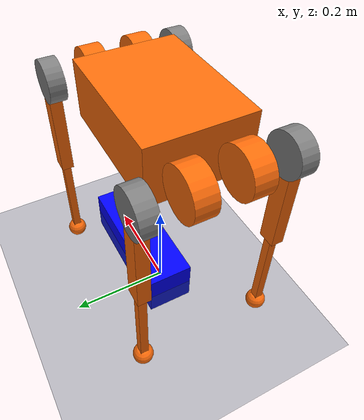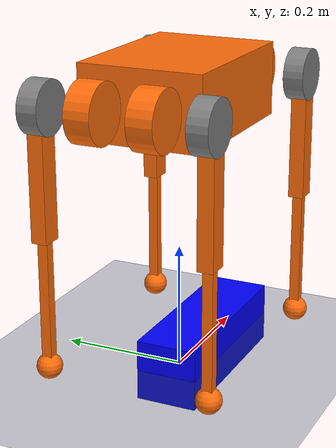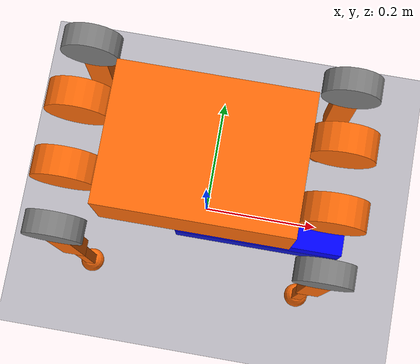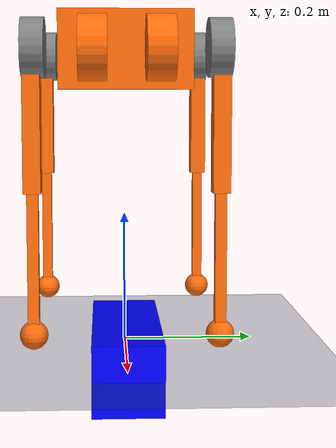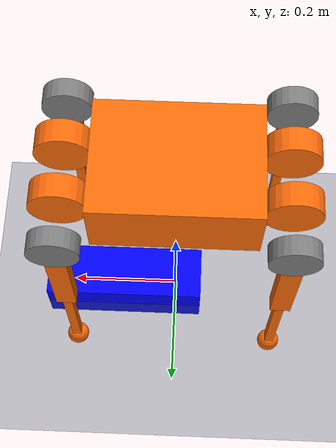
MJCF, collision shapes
<mujoco model="a1">
  <compiler angle="radian" meshdir="../meshes/"/>

  <asset>
    <texture type="skybox" builtin="gradient" rgb1="0.3 0.5 0.7" rgb2="0 0 0" width="512" height="512" />
    <texture name="texplane" type="2d" builtin="checker" rgb1=".2 .3 .4" rgb2=".1 0.15 0.2" width="512" height="512" mark="cross" markrgb=".8 .8 .8" />
    <material name="matplane" reflectance="0.3" texture="texplane" texrepeat="1 1" texuniform="true" />

    <mesh name="trunk" file="trunk.obj"/>
    <mesh name="hip" file="hip.obj"/>
    <mesh name="thigh_mirror" file="thigh_mirror.obj"/>
    <mesh name="calf" file="calf.obj"/>
    <mesh name="thigh" file="thigh.obj"/>
  </asset>

  <worldbody>
    <light directional="true" diffuse=".4 .4 .4" specular="0.1 0.1 0.1" pos="0 0 5.0" dir="0 0 -1" castshadow="false" />
    <light directional="true" diffuse=".6 .6 .6" specular="0.2 0.2 0.2" pos="0 0 4" dir="0 0 -1" />
    <geom name="floor" pos="0 0 0" size="15 15 1" type="plane" material="matplane" margin="0.001" condim="3" friction="1 0.005 0.0001" />

    <geom type="box" size="0.15 0.05 0.05" pos="0.1 0 0" rgba="0 0 1 0.3"/>

    <geom size="0.0005 0.0005 0.0005" type="box" contype="0" conaffinity="0" group="1" density="0"/>

    <body name="trunk" pos="0 0 0.45">
      <site name="imu_sensor_site" pos="0 0 0" />
      <inertial pos="0.0 0.0041 -0.0005" mass="6.0" diaginertia="0.0158533 0.0377999 0.0456542" />
      <joint name="floating_base" type="free" limited="false" actuatorfrclimited="false"/>
      <geom type="mesh" contype="0" conaffinity="0" group="1" density="0" rgba="1 0.423529 0.0392157 1" mesh="trunk"/>
      <geom size="0.1335 0.097 0.057" type="box" group="2" rgba="1 0.423529 0.0392157 1"/>
      <body name="FR_hip" pos="0.1805 -0.047 0">
        <inertial pos="-0.00266413 -0.0163358 2.49436e-05" quat="0.475134 0.521822 -0.477036 0.523818" mass="0.864993" diaginertia="0.00151807 0.00143717 0.000946744"/>
        <joint name="RF_HAA" pos="0 0 0" axis="1 0 0" range="-0.802851 0.802851" actuatorfrcrange="-33.5 33.5" damping="0.01" frictionloss="0.2"/>
        <geom quat="0 1 0 0" type="mesh" contype="0" conaffinity="0" group="1" density="0" rgba="1 0.423529 0.0392157 1" mesh="hip"/>
        <geom size="0.046 0.02" quat="0.707107 0.707107 0 0" type="cylinder" group="2" rgba="1 0.423529 0.0392157 1"/>
        <geom size="0.041 0.016" pos="0 -0.081 0" quat="0.707107 0.707107 0 0" type="cylinder" group="2"/>
        <body name="FR_thigh" pos="0 -0.0838 0">
          <inertial pos="-0.003237 0.022327 -0.027326" quat="0.999125 -0.00256393 -0.0409531 -0.00806091" mass="1.013" diaginertia="0.00555739 0.00513936 0.00133944"/>
          <joint name="RF_HFE" pos="0 0 0" axis="0 1 0" range="-1.0472 4.18879" actuatorfrcrange="-33.5 33.5" damping="0.01" frictionloss="0.2"/>
          <geom type="mesh" contype="0" conaffinity="0" group="1" density="0" rgba="1 0.423529 0.0392157 1" mesh="thigh_mirror"/>
          <geom size="0.1 0.01225 0.017" pos="0 0 -0.1" quat="0.707107 0 0.707107 0" type="box" group="2" rgba="1 0.423529 0.0392157 1"/>
          <body name="FR_calf" pos="0 0 -0.2">
            <inertial pos="0.00472659 0 -0.131975" quat="0.706886 0.017653 0.017653 0.706886" mass="0.226" diaginertia="0.00340344 0.00339393 3.54834e-05"/>
            <joint name="RF_KFE" pos="0 0 0" axis="0 1 0" range="-2.69653 -0.916298" actuatorfrcrange="-33.5 33.5" damping="0.01" frictionloss="0.2"/>
            <geom type="mesh" contype="0" conaffinity="0" group="1" density="0" rgba="1 0.423529 0.0392157 1" mesh="calf"/>
            <geom size="0.1 0.008 0.008" pos="0 0 -0.1" quat="0.707107 0 0.707107 0" type="box" group="2" rgba="1 0.423529 0.0392157 1"/>
            <body name="RF_FOOT" pos="0 0 -0.2">
              <geom size="0.01" contype="0" conaffinity="0" group="1" density="0" rgba="1 0.423529 0.0392157 1"/>
              <geom name="RF_FOOT_geom" size="0.02" group="2" rgba="1 0.423529 0.0392157 1"/>
            </body>
          </body>
        </body>
      </body>
      <body name="FL_hip" pos="0.1805 0.047 0">
        <inertial pos="-0.00266413 0.0163358 2.49436e-05" quat="0.521822 0.475134 -0.523818 0.477036" mass="0.864993" diaginertia="0.00151807 0.00143717 0.000946744"/>
        <joint name="LF_HAA" pos="0 0 0" axis="1 0 0" range="-0.802851 0.802851" actuatorfrcrange="-33.5 33.5" damping="0.01" frictionloss="0.2"/>
        <geom type="mesh" contype="0" conaffinity="0" group="1" density="0" rgba="1 0.423529 0.0392157 1" mesh="hip"/>
        <geom size="0.046 0.02" quat="0.707107 0.707107 0 0" type="cylinder" group="2" rgba="1 0.423529 0.0392157 1"/>
        <geom size="0.041 0.016" pos="0 0.081 0" quat="0.707107 0.707107 0 0" group="2" type="cylinder"/>
        <body name="FL_thigh" pos="0 0.0838 0">
          <inertial pos="-0.003237 -0.022327 -0.027326" quat="0.999125 0.00256393 -0.0409531 0.00806091" mass="1.013" diaginertia="0.00555739 0.00513936 0.00133944"/>
          <joint name="LF_HFE" pos="0 0 0" axis="0 1 0" range="-1.0472 4.18879" actuatorfrcrange="-33.5 33.5" damping="0.01" frictionloss="0.2"/>
          <geom type="mesh" contype="0" conaffinity="0" group="1" density="0" rgba="1 0.423529 0.0392157 1" mesh="thigh"/>
          <geom size="0.1 0.01225 0.017" pos="0 0 -0.1" quat="0.707107 0 0.707107 0" type="box" group="2" rgba="1 0.423529 0.0392157 1"/>
          <body name="FL_calf" pos="0 0 -0.2">
            <inertial pos="0.00472659 0 -0.131975" quat="0.706886 0.017653 0.017653 0.706886" mass="0.226" diaginertia="0.00340344 0.00339393 3.54834e-05"/>
            <joint name="LF_KFE" pos="0 0 0" axis="0 1 0" range="-2.69653 -0.916298" actuatorfrcrange="-33.5 33.5" damping="0.01" frictionloss="0.2"/>
            <geom type="mesh" contype="0" conaffinity="0" group="1" density="0" rgba="1 0.423529 0.0392157 1" mesh="calf"/>
            <geom size="0.1 0.008 0.008" pos="0 0 -0.1" quat="0.707107 0 0.707107 0" type="box" group="2" rgba="1 0.423529 0.0392157 1"/>
            <body name="LF_FOOT" pos="0 0 -0.2">
              <geom size="0.01" contype="0" conaffinity="0" group="1" density="0" rgba="1 0.423529 0.0392157 1"/>
              <geom name="LF_FOOT_geom" size="0.02" group="2" rgba="1 0.423529 0.0392157 1"/>
            </body>
          </body>
        </body>
      </body>
      <body name="RR_hip" pos="-0.1805 -0.047 0">
        <inertial pos="0.00266413 -0.0163358 2.49436e-05" quat="0.523818 0.477036 -0.521822 0.475134" mass="0.864993" diaginertia="0.00151807 0.00143717 0.000946744"/>
        <joint name="RH_HAA" pos="0 0 0" axis="1 0 0" range="-0.802851 0.802851" actuatorfrcrange="-33.5 33.5" damping="0.01" frictionloss="0.2"/>
        <geom quat="0 0 0 -1" type="mesh" contype="0" conaffinity="0" group="1" density="0" rgba="1 0.423529 0.0392157 1" mesh="hip"/>
        <geom size="0.046 0.02" quat="0.707107 0.707107 0 0" type="cylinder" group="2" rgba="1 0.423529 0.0392157 1"/>
        <geom size="0.041 0.016" pos="0 -0.081 0" quat="0.707107 0.707107 0 0" type="cylinder" group="2"/>
        <body name="RR_thigh" pos="0 -0.0838 0">
          <inertial pos="-0.003237 0.022327 -0.027326" quat="0.999125 -0.00256393 -0.0409531 -0.00806091" mass="1.013" diaginertia="0.00555739 0.00513936 0.00133944"/>
          <joint name="RH_HFE" pos="0 0 0" axis="0 1 0" range="-1.0472 4.18879" actuatorfrcrange="-33.5 33.5" damping="0.01" frictionloss="0.2"/>
          <geom type="mesh" contype="0" conaffinity="0" group="1" density="0" rgba="1 0.423529 0.0392157 1" mesh="thigh_mirror"/>
          <geom size="0.1 0.01225 0.017" pos="0 0 -0.1" quat="0.707107 0 0.707107 0" type="box" group="2" rgba="1 0.423529 0.0392157 1"/>
          <body name="RR_calf" pos="0 0 -0.2">
            <inertial pos="0.00472659 0 -0.131975" quat="0.706886 0.017653 0.017653 0.706886" mass="0.226" diaginertia="0.00340344 0.00339393 3.54834e-05"/>
            <joint name="RH_KFE" pos="0 0 0" axis="0 1 0" range="-2.69653 -0.916298" actuatorfrcrange="-33.5 33.5" damping="0.01" frictionloss="0.2"/>
            <geom type="mesh" contype="0" conaffinity="0" group="1" density="0" rgba="1 0.423529 0.0392157 1" mesh="calf"/>
            <geom size="0.1 0.008 0.008" pos="0 0 -0.1" quat="0.707107 0 0.707107 0" type="box" group="2" rgba="1 0.423529 0.0392157 1"/>
            <body name="RH_FOOT" pos="0 0 -0.2">
              <geom size="0.01" contype="0" conaffinity="0" group="1" density="0" rgba="1 0.423529 0.0392157 1"/>
              <geom name="RH_FOOT_geom" size="0.02" group="2" rgba="1 0.423529 0.0392157 1"/>
            </body>
          </body>
        </body>
      </body>
      <body name="RL_hip" pos="-0.1805 0.047 0">
        <inertial pos="0.00266413 0.0163358 2.49436e-05" quat="0.477036 0.523818 -0.475134 0.521822" mass="0.864993" diaginertia="0.00151807 0.00143717 0.000946744"/>
        <joint name="LH_HAA" pos="0 0 0" axis="1 0 0" range="-0.802851 0.802851" actuatorfrcrange="-33.5 33.5" damping="0.01" frictionloss="0.2"/>
        <geom quat="0 0 1 0" type="mesh" contype="0" conaffinity="0" group="1" density="0" rgba="1 0.423529 0.0392157 1" mesh="hip"/>
        <geom size="0.046 0.02" quat="0.707107 0.707107 0 0" type="cylinder" group="2" rgba="1 0.423529 0.0392157 1"/>
        <geom size="0.041 0.016" pos="0 0.081 0" quat="0.707107 0.707107 0 0" type="cylinder" group="2"/>
        <body name="RL_thigh" pos="0 0.0838 0">
          <inertial pos="-0.003237 -0.022327 -0.027326" quat="0.999125 0.00256393 -0.0409531 0.00806091" mass="1.013" diaginertia="0.00555739 0.00513936 0.00133944"/>
          <joint name="LH_HFE" pos="0 0 0" axis="0 1 0" range="-1.0472 4.18879" actuatorfrcrange="-33.5 33.5" damping="0.01" frictionloss="0.2"/>
          <geom type="mesh" contype="0" conaffinity="0" group="1" density="0" rgba="1 0.423529 0.0392157 1" mesh="thigh"/>
          <geom size="0.1 0.01225 0.017" pos="0 0 -0.1" quat="0.707107 0 0.707107 0" type="box" group="2" rgba="1 0.423529 0.0392157 1"/>
          <body name="RL_calf" pos="0 0 -0.2">
            <inertial pos="0.00472659 0 -0.131975" quat="0.706886 0.017653 0.017653 0.706886" mass="0.226" diaginertia="0.00340344 0.00339393 3.54834e-05"/>
            <joint name="LH_KFE" pos="0 0 0" axis="0 1 0" range="-2.69653 -0.916298" actuatorfrcrange="-33.5 33.5" damping="0.01" frictionloss="0.2"/>
            <geom type="mesh" contype="0" conaffinity="0" group="1" density="0" rgba="1 0.423529 0.0392157 1" mesh="calf"/>
            <geom size="0.1 0.008 0.008" pos="0 0 -0.1" quat="0.707107 0 0.707107 0" type="box" group="2" rgba="1 0.423529 0.0392157 1"/>
            <body name="LH_FOOT" pos="0 0 -0.2">
              <geom size="0.01" contype="0" conaffinity="0" group="1" density="0" rgba="1 0.423529 0.0392157 1"/>
              <geom name="LH_FOOT_geom" size="0.02" group="2" rgba="1 0.423529 0.0392157 1"/>
            </body>
          </body>
        </body>
      </body>
    </body>
  </worldbody>

  <sensor>
    <framequat name="imu_quat" objtype='site' objname="imu_sensor_site" />
    <gyro name="imu_angvel" site="imu_sensor_site" />
    <accelerometer name="imu_linacc" site="imu_sensor_site" />

    <jointpos joint="LF_HAA" />
    <jointpos joint="LF_HFE" />
    <jointpos joint="LF_KFE" />
    <jointpos joint="LH_HAA" />
    <jointpos joint="LH_HFE" />
    <jointpos joint="LH_KFE" />
    <jointpos joint="RF_HAA" />
    <jointpos joint="RF_HFE" />
    <jointpos joint="RF_KFE" />
    <jointpos joint="RH_HAA" />
    <jointpos joint="RH_HFE" />
    <jointpos joint="RH_KFE" />

    <jointvel joint="LF_HAA" />
    <jointvel joint="LF_HFE" />
    <jointvel joint="LF_KFE" />
    <jointvel joint="LH_HAA" />
    <jointvel joint="LH_HFE" />
    <jointvel joint="LH_KFE" />
    <jointvel joint="RF_HAA" />
    <jointvel joint="RF_HFE" />
    <jointvel joint="RF_KFE" />
    <jointvel joint="RH_HAA" />
    <jointvel joint="RH_HFE" />
    <jointvel joint="RH_KFE" />

    <framequat name="base_quat" objtype='site' objname="imu_sensor_site" />
    <framepos name="base_pose" objtype='site' objname="imu_sensor_site" />
    <frameangvel name="base_angvel" objtype='site' objname="imu_sensor_site" />
    <framelinvel name="base_linvel" objtype='site' objname="imu_sensor_site" />

  </sensor>

  <actuator>
    <motor name="LF_HAA" joint="LF_HAA" gear="1" ctrlrange="-91.0035 91.0035" ctrllimited="true"/>
    <motor name="LF_HFE" joint="LF_HFE" gear="1" ctrlrange="-93.33 93.33" ctrllimited="true"/>
    <motor name="LF_KFE" joint="LF_KFE" gear="1" ctrlrange="-140 140" ctrllimited="true"/>
    <motor name="LH_HAA" joint="LH_HAA" gear="1" ctrlrange="-91.0035 91.0035" ctrllimited="true"/>
    <motor name="LH_HFE" joint="LH_HFE" gear="1" ctrlrange="-93.33 93.33" ctrllimited="true"/>
    <motor name="LH_KFE" joint="LH_KFE" gear="1" ctrlrange="-140 140" ctrllimited="true"/>
    <motor name="RF_HAA" joint="RF_HAA" gear="1" ctrlrange="-91.0035 91.0035" ctrllimited="true"/>
    <motor name="RF_HFE" joint="RF_HFE" gear="1" ctrlrange="-93.33 93.33" ctrllimited="true"/>
    <motor name="RF_KFE" joint="RF_KFE" gear="1" ctrlrange="-140 140" ctrllimited="true"/>
    <motor name="RH_HAA" joint="RH_HAA" gear="1" ctrlrange="-91.0035 91.0035" ctrllimited="true"/>
    <motor name="RH_HFE" joint="RH_HFE" gear="1" ctrlrange="-93.33 93.33" ctrllimited="true"/>
    <motor name="RH_KFE" joint="RH_KFE" gear="1" ctrlrange="-140 140" ctrllimited="true"/>
  </actuator>

  <keyframe>
    <!-- nominal standing posture: base at 0.3314 m (feet on ground) with default joint angles.
         joint order matches model body order: RF, LF, RH, LH (each HAA, HFE, KFE) -->
    <key name="home" qpos="0 0 0.3314 1 0 0 0  0.2 0.72 -1.44  -0.2 0.72 -1.44  0.2 0.72 -1.44  -0.2 0.72 -1.44"/>
  </keyframe>

</mujoco>
